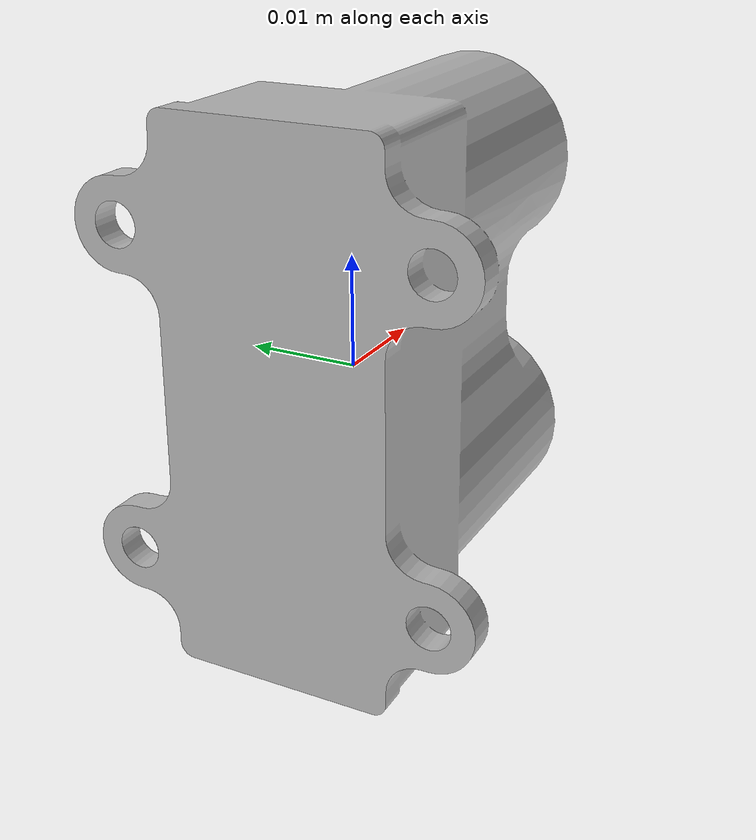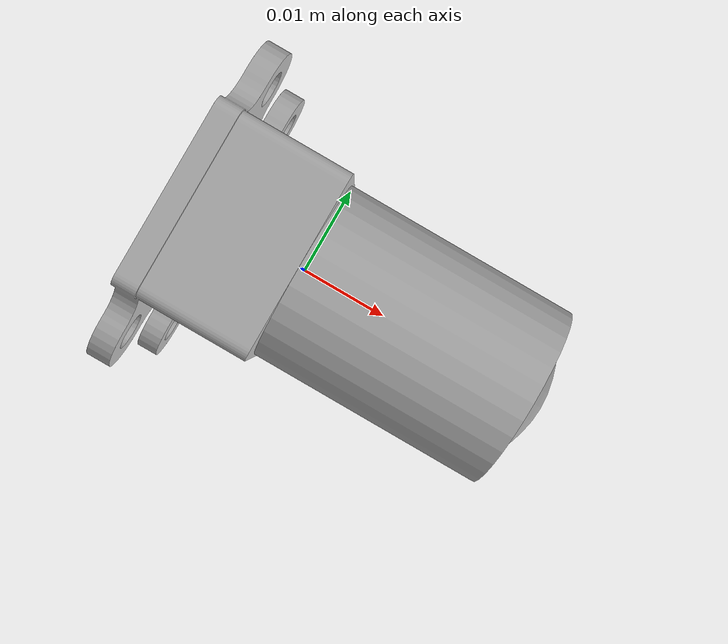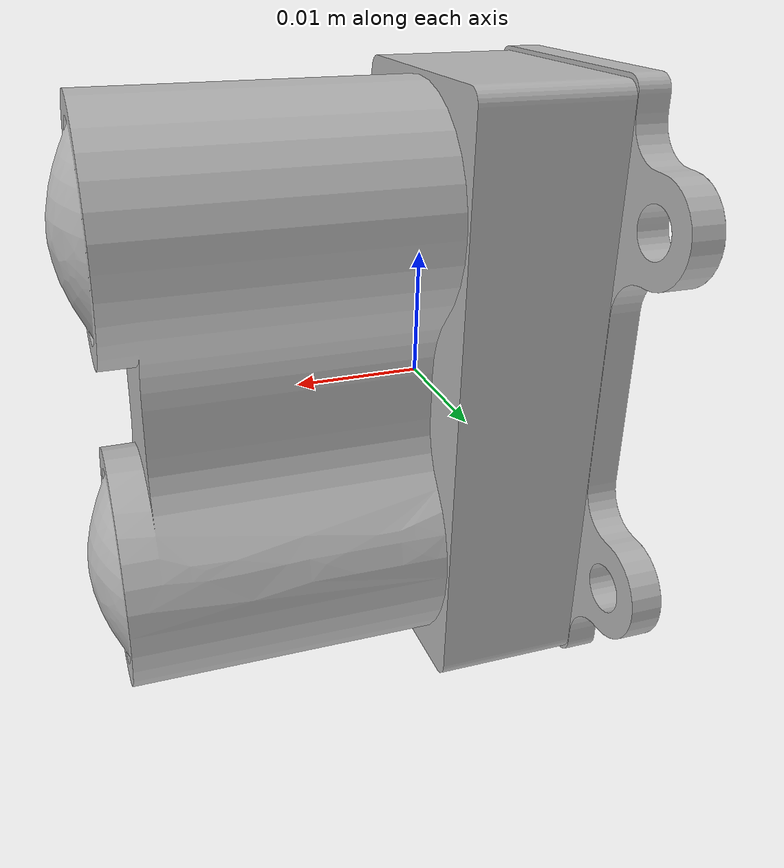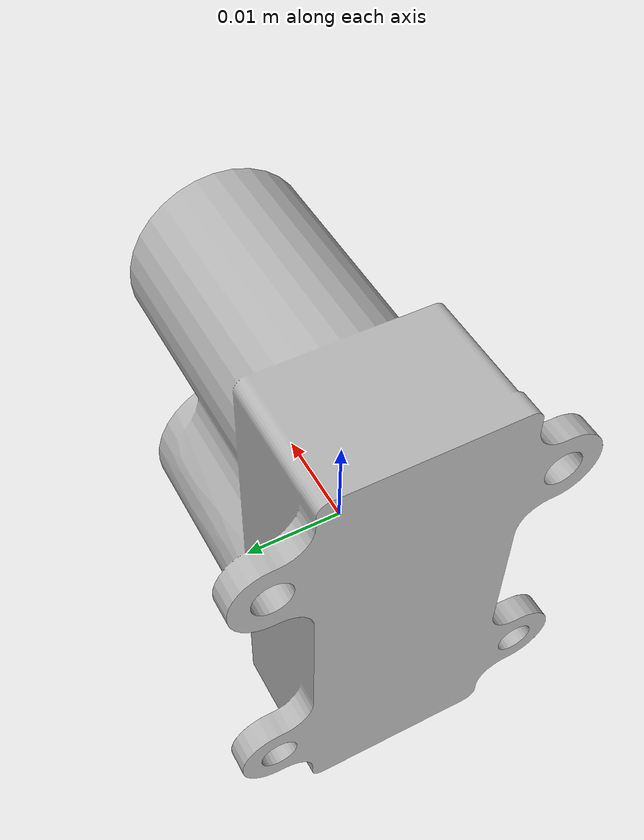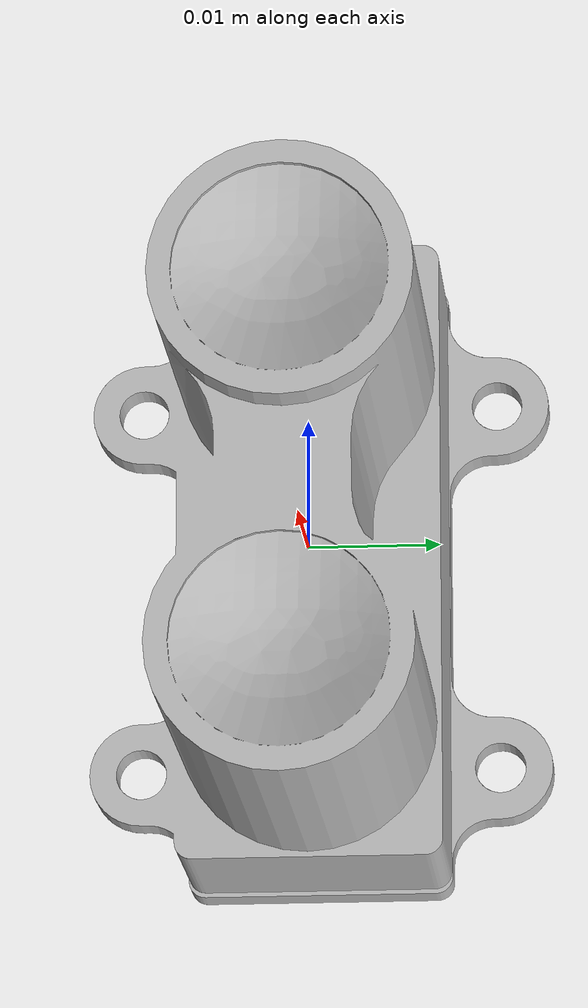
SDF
<?xml version="1.0"?>
<sdf version='1.6'>
  <model name='LidarLite'>
    <link name="link">
      <inertial>
        <mass>0.027</mass>
        <inertia>
          <ixx>0.00000597</ixx>
          <iyy>0.00000867</iyy>
          <izz>0.0000045</izz>
        </inertia>
        <pose frame=''>0 0 0 0 -0 0</pose>
      </inertial>
      <self_collide>0</self_collide>
      <enable_wind>0</enable_wind>
      <kinematic>0</kinematic>
      <gravity>1</gravity>
      <visual name="visual">
        <pose>0 0 0 0 1.57 0</pose>
        <geometry>
          <mesh>
            <uri>model://lidar_lite/meshes/LidarLite.dae</uri>
          </mesh>
        </geometry>
      </visual>
      <sensor name='maav_lidar' type='ray'>
        <always_on>true</always_on>
        <update_rate>50</update_rate>
        <visualize>true</visualize>
        <pose>0.00 0 0 0 0 0</pose>
        <ray>
          <scan>
            <horizontal>
              <samples>2</samples>
              <resolution>1</resolution>
              <min_angle>0</min_angle>
              <max_angle>0</max_angle>
            </horizontal>
            <vertical>
              <samples>2</samples>
              <resolution>1</resolution>
              <min_angle>-0</min_angle>
              <max_angle>0</max_angle>
            </vertical>
          </scan>
          <range>
            <min>0.03</min>
            <max>10</max>
            <resolution>0.01</resolution>
          </range>
        </ray>
        <plugin name="maav_lidar_plugin" filename="libMaavLidarPlugin.so">
          <noise_density>0.02</noise_density>
          <bias_mean>0.09</bias_mean>
          <bias_std>0.01</bias_std>
          <outlier_mean>9.99</outlier_mean>
          <outlier_std>1</outlier_std>
          <outlier_freq>150</outlier_freq>
          <outlier_chi>1</outlier_chi>
        </plugin>
      </sensor>
    </link>
  </model>
</sdf>
